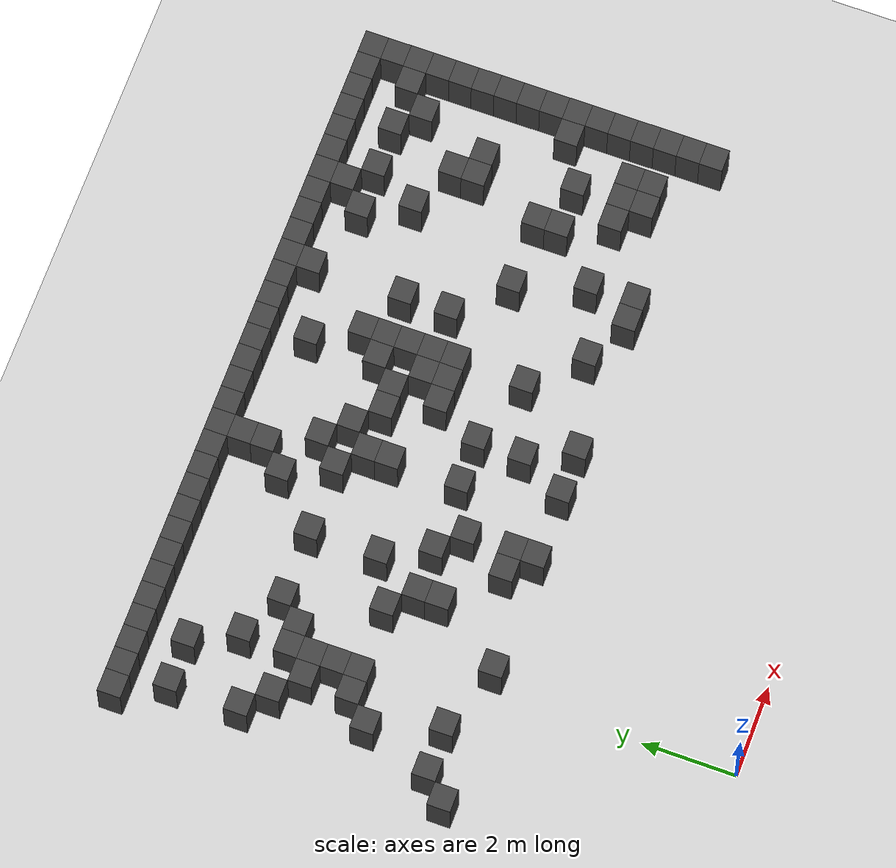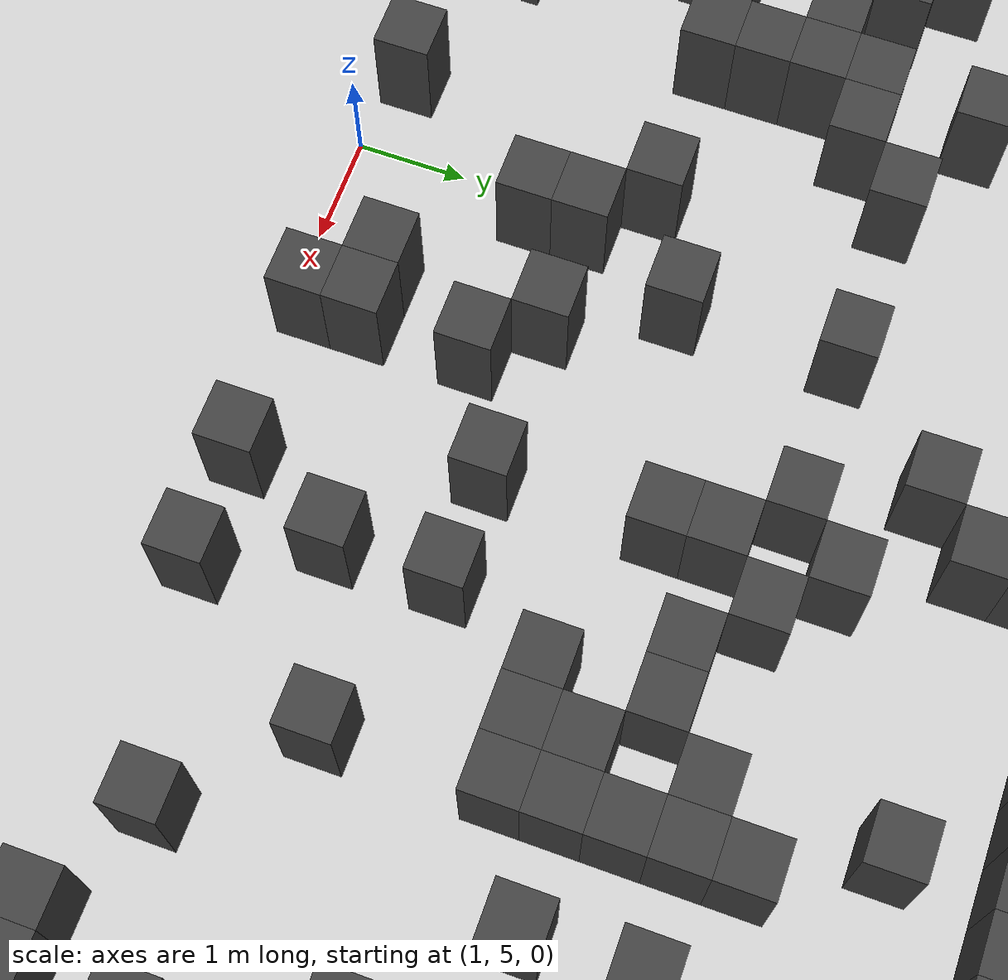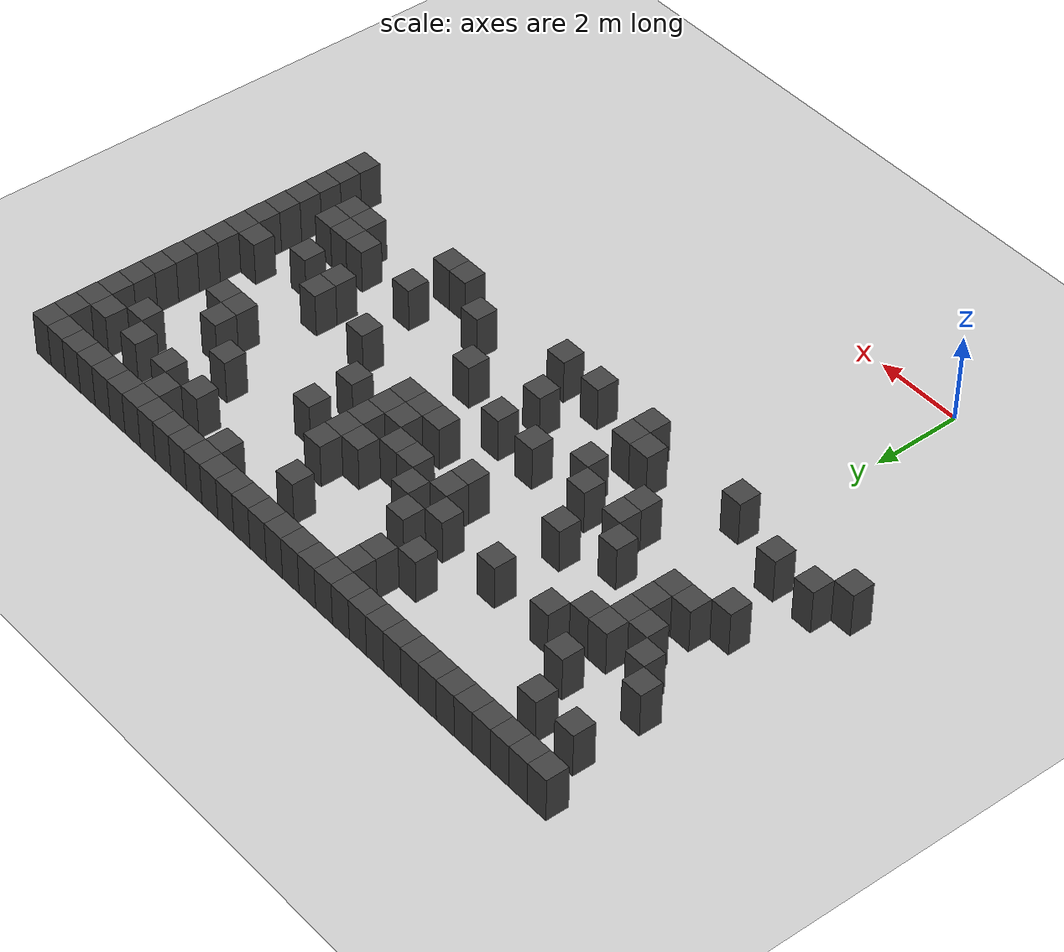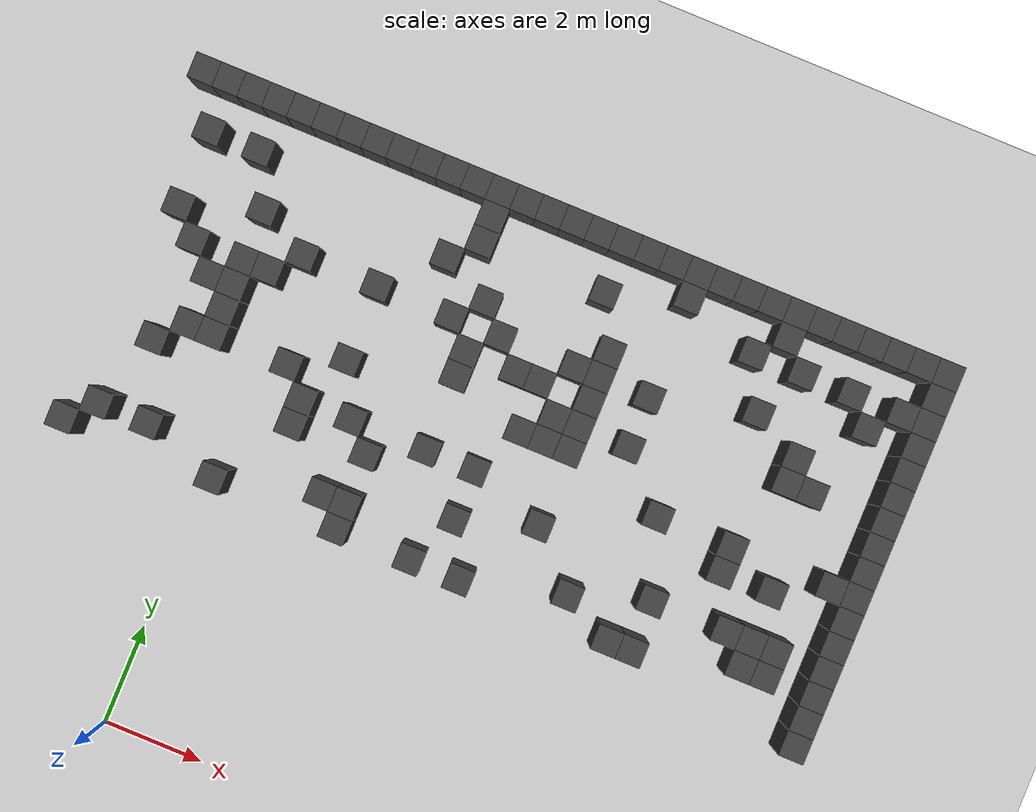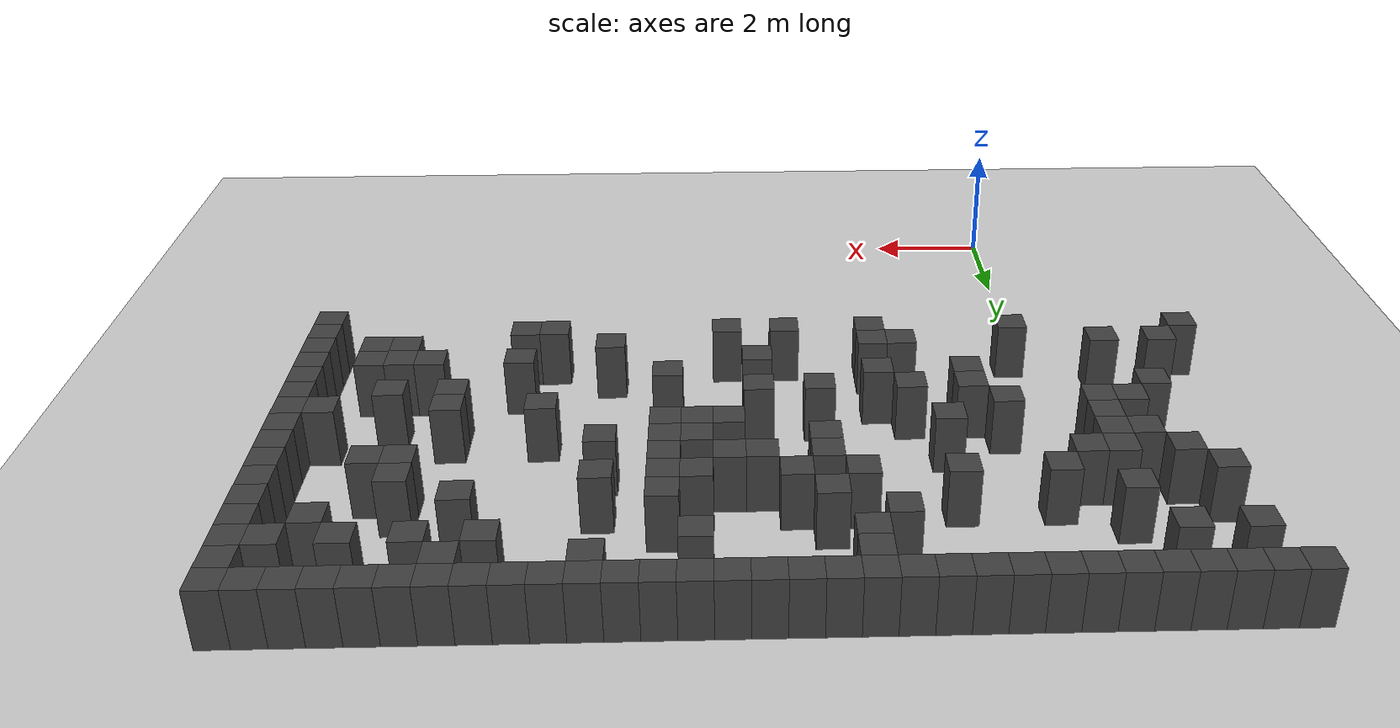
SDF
<sdf version="1.7">
 <world name="map_3891">
  <model name="ground_plane">
   <static>true</static>
   <link name="link">
    <collision name="collision">
     <geometry><plane><normal>0 0 1</normal><size>200 200</size></plane></geometry>
    </collision>
    <visual name="visual">
     <geometry><plane><normal>0 0 1</normal><size>200 200</size></plane></geometry>
     <material><ambient>0.8 0.8 0.8 1</ambient><diffuse>0.8 0.8 0.8 1</diffuse></material>
    </visual>
   </link>
  </model>
  <model name="maze_environment">
   <static>true</static>
   <link name="wall_19">
    <pose>-2.750 12.250 0.500 0 0 0</pose>
    <collision name="col"><geometry><box><size>0.5 0.5 1.0</size></box></geometry></collision>
    <visual name="vis">
     <geometry><box><size>0.5 0.5 1.0</size></box></geometry>
     <material><ambient>0.15 0.15 0.15 1</ambient><diffuse>0.25 0.25 0.25 1</diffuse></material>
    </visual>
   </link>
   <link name="wall_20">
    <pose>-2.250 12.250 0.500 0 0 0</pose>
    <collision name="col"><geometry><box><size>0.5 0.5 1.0</size></box></geometry></collision>
    <visual name="vis">
     <geometry><box><size>0.5 0.5 1.0</size></box></geometry>
     <material><ambient>0.15 0.15 0.15 1</ambient><diffuse>0.25 0.25 0.25 1</diffuse></material>
    </visual>
   </link>
   <link name="wall_21">
    <pose>-1.750 12.250 0.500 0 0 0</pose>
    <collision name="col"><geometry><box><size>0.5 0.5 1.0</size></box></geometry></collision>
    <visual name="vis">
     <geometry><box><size>0.5 0.5 1.0</size></box></geometry>
     <material><ambient>0.15 0.15 0.15 1</ambient><diffuse>0.25 0.25 0.25 1</diffuse></material>
    </visual>
   </link>
   <link name="wall_22">
    <pose>-1.250 12.250 0.500 0 0 0</pose>
    <collision name="col"><geometry><box><size>0.5 0.5 1.0</size></box></geometry></collision>
    <visual name="vis">
     <geometry><box><size>0.5 0.5 1.0</size></box></geometry>
     <material><ambient>0.15 0.15 0.15 1</ambient><diffuse>0.25 0.25 0.25 1</diffuse></material>
    </visual>
   </link>
   <link name="wall_23">
    <pose>-0.750 12.250 0.500 0 0 0</pose>
    <collision name="col"><geometry><box><size>0.5 0.5 1.0</size></box></geometry></collision>
    <visual name="vis">
     <geometry><box><size>0.5 0.5 1.0</size></box></geometry>
     <material><ambient>0.15 0.15 0.15 1</ambient><diffuse>0.25 0.25 0.25 1</diffuse></material>
    </visual>
   </link>
   <link name="wall_24">
    <pose>-0.250 12.250 0.500 0 0 0</pose>
    <collision name="col"><geometry><box><size>0.5 0.5 1.0</size></box></geometry></collision>
    <visual name="vis">
     <geometry><box><size>0.5 0.5 1.0</size></box></geometry>
     <material><ambient>0.15 0.15 0.15 1</ambient><diffuse>0.25 0.25 0.25 1</diffuse></material>
    </visual>
   </link>
   <link name="wall_25">
    <pose>0.250 12.250 0.500 0 0 0</pose>
    <collision name="col"><geometry><box><size>0.5 0.5 1.0</size></box></geometry></collision>
    <visual name="vis">
     <geometry><box><size>0.5 0.5 1.0</size></box></geometry>
     <material><ambient>0.15 0.15 0.15 1</ambient><diffuse>0.25 0.25 0.25 1</diffuse></material>
    </visual>
   </link>
   <link name="wall_26">
    <pose>0.750 12.250 0.500 0 0 0</pose>
    <collision name="col"><geometry><box><size>0.5 0.5 1.0</size></box></geometry></collision>
    <visual name="vis">
     <geometry><box><size>0.5 0.5 1.0</size></box></geometry>
     <material><ambient>0.15 0.15 0.15 1</ambient><diffuse>0.25 0.25 0.25 1</diffuse></material>
    </visual>
   </link>
   <link name="wall_27">
    <pose>1.250 12.250 0.500 0 0 0</pose>
    <collision name="col"><geometry><box><size>0.5 0.5 1.0</size></box></geometry></collision>
    <visual name="vis">
     <geometry><box><size>0.5 0.5 1.0</size></box></geometry>
     <material><ambient>0.15 0.15 0.15 1</ambient><diffuse>0.25 0.25 0.25 1</diffuse></material>
    </visual>
   </link>
   <link name="wall_28">
    <pose>1.750 12.250 0.500 0 0 0</pose>
    <collision name="col"><geometry><box><size>0.5 0.5 1.0</size></box></geometry></collision>
    <visual name="vis">
     <geometry><box><size>0.5 0.5 1.0</size></box></geometry>
     <material><ambient>0.15 0.15 0.15 1</ambient><diffuse>0.25 0.25 0.25 1</diffuse></material>
    </visual>
   </link>
   <link name="wall_29">
    <pose>2.250 12.250 0.500 0 0 0</pose>
    <collision name="col"><geometry><box><size>0.5 0.5 1.0</size></box></geometry></collision>
    <visual name="vis">
     <geometry><box><size>0.5 0.5 1.0</size></box></geometry>
     <material><ambient>0.15 0.15 0.15 1</ambient><diffuse>0.25 0.25 0.25 1</diffuse></material>
    </visual>
   </link>
   <link name="wall_30">
    <pose>2.750 12.250 0.500 0 0 0</pose>
    <collision name="col"><geometry><box><size>0.5 0.5 1.0</size></box></geometry></collision>
    <visual name="vis">
     <geometry><box><size>0.5 0.5 1.0</size></box></geometry>
     <material><ambient>0.15 0.15 0.15 1</ambient><diffuse>0.25 0.25 0.25 1</diffuse></material>
    </visual>
   </link>
   <link name="wall_31">
    <pose>3.250 12.250 0.500 0 0 0</pose>
    <collision name="col"><geometry><box><size>0.5 0.5 1.0</size></box></geometry></collision>
    <visual name="vis">
     <geometry><box><size>0.5 0.5 1.0</size></box></geometry>
     <material><ambient>0.15 0.15 0.15 1</ambient><diffuse>0.25 0.25 0.25 1</diffuse></material>
    </visual>
   </link>
   <link name="wall_32">
    <pose>3.750 12.250 0.500 0 0 0</pose>
    <collision name="col"><geometry><box><size>0.5 0.5 1.0</size></box></geometry></collision>
    <visual name="vis">
     <geometry><box><size>0.5 0.5 1.0</size></box></geometry>
     <material><ambient>0.15 0.15 0.15 1</ambient><diffuse>0.25 0.25 0.25 1</diffuse></material>
    </visual>
   </link>
   <link name="wall_33">
    <pose>4.250 12.250 0.500 0 0 0</pose>
    <collision name="col"><geometry><box><size>0.5 0.5 1.0</size></box></geometry></collision>
    <visual name="vis">
     <geometry><box><size>0.5 0.5 1.0</size></box></geometry>
     <material><ambient>0.15 0.15 0.15 1</ambient><diffuse>0.25 0.25 0.25 1</diffuse></material>
    </visual>
   </link>
   <link name="wall_34">
    <pose>4.750 12.250 0.500 0 0 0</pose>
    <collision name="col"><geometry><box><size>0.5 0.5 1.0</size></box></geometry></collision>
    <visual name="vis">
     <geometry><box><size>0.5 0.5 1.0</size></box></geometry>
     <material><ambient>0.15 0.15 0.15 1</ambient><diffuse>0.25 0.25 0.25 1</diffuse></material>
    </visual>
   </link>
   <link name="wall_35">
    <pose>5.250 12.250 0.500 0 0 0</pose>
    <collision name="col"><geometry><box><size>0.5 0.5 1.0</size></box></geometry></collision>
    <visual name="vis">
     <geometry><box><size>0.5 0.5 1.0</size></box></geometry>
     <material><ambient>0.15 0.15 0.15 1</ambient><diffuse>0.25 0.25 0.25 1</diffuse></material>
    </visual>
   </link>
   <link name="wall_36">
    <pose>5.750 12.250 0.500 0 0 0</pose>
    <collision name="col"><geometry><box><size>0.5 0.5 1.0</size></box></geometry></collision>
    <visual name="vis">
     <geometry><box><size>0.5 0.5 1.0</size></box></geometry>
     <material><ambient>0.15 0.15 0.15 1</ambient><diffuse>0.25 0.25 0.25 1</diffuse></material>
    </visual>
   </link>
   <link name="wall_37">
    <pose>6.250 12.250 0.500 0 0 0</pose>
    <collision name="col"><geometry><box><size>0.5 0.5 1.0</size></box></geometry></collision>
    <visual name="vis">
     <geometry><box><size>0.5 0.5 1.0</size></box></geometry>
     <material><ambient>0.15 0.15 0.15 1</ambient><diffuse>0.25 0.25 0.25 1</diffuse></material>
    </visual>
   </link>
   <link name="wall_38">
    <pose>6.750 12.250 0.500 0 0 0</pose>
    <collision name="col"><geometry><box><size>0.5 0.5 1.0</size></box></geometry></collision>
    <visual name="vis">
     <geometry><box><size>0.5 0.5 1.0</size></box></geometry>
     <material><ambient>0.15 0.15 0.15 1</ambient><diffuse>0.25 0.25 0.25 1</diffuse></material>
    </visual>
   </link>
   <link name="wall_39">
    <pose>7.250 12.250 0.500 0 0 0</pose>
    <collision name="col"><geometry><box><size>0.5 0.5 1.0</size></box></geometry></collision>
    <visual name="vis">
     <geometry><box><size>0.5 0.5 1.0</size></box></geometry>
     <material><ambient>0.15 0.15 0.15 1</ambient><diffuse>0.25 0.25 0.25 1</diffuse></material>
    </visual>
   </link>
   <link name="wall_40">
    <pose>7.750 12.250 0.500 0 0 0</pose>
    <collision name="col"><geometry><box><size>0.5 0.5 1.0</size></box></geometry></collision>
    <visual name="vis">
     <geometry><box><size>0.5 0.5 1.0</size></box></geometry>
     <material><ambient>0.15 0.15 0.15 1</ambient><diffuse>0.25 0.25 0.25 1</diffuse></material>
    </visual>
   </link>
   <link name="wall_41">
    <pose>8.250 12.250 0.500 0 0 0</pose>
    <collision name="col"><geometry><box><size>0.5 0.5 1.0</size></box></geometry></collision>
    <visual name="vis">
     <geometry><box><size>0.5 0.5 1.0</size></box></geometry>
     <material><ambient>0.15 0.15 0.15 1</ambient><diffuse>0.25 0.25 0.25 1</diffuse></material>
    </visual>
   </link>
   <link name="wall_42">
    <pose>8.750 12.250 0.500 0 0 0</pose>
    <collision name="col"><geometry><box><size>0.5 0.5 1.0</size></box></geometry></collision>
    <visual name="vis">
     <geometry><box><size>0.5 0.5 1.0</size></box></geometry>
     <material><ambient>0.15 0.15 0.15 1</ambient><diffuse>0.25 0.25 0.25 1</diffuse></material>
    </visual>
   </link>
   <link name="wall_43">
    <pose>9.250 12.250 0.500 0 0 0</pose>
    <collision name="col"><geometry><box><size>0.5 0.5 1.0</size></box></geometry></collision>
    <visual name="vis">
     <geometry><box><size>0.5 0.5 1.0</size></box></geometry>
     <material><ambient>0.15 0.15 0.15 1</ambient><diffuse>0.25 0.25 0.25 1</diffuse></material>
    </visual>
   </link>
   <link name="wall_44">
    <pose>9.750 12.250 0.500 0 0 0</pose>
    <collision name="col"><geometry><box><size>0.5 0.5 1.0</size></box></geometry></collision>
    <visual name="vis">
     <geometry><box><size>0.5 0.5 1.0</size></box></geometry>
     <material><ambient>0.15 0.15 0.15 1</ambient><diffuse>0.25 0.25 0.25 1</diffuse></material>
    </visual>
   </link>
   <link name="wall_45">
    <pose>10.250 12.250 0.500 0 0 0</pose>
    <collision name="col"><geometry><box><size>0.5 0.5 1.0</size></box></geometry></collision>
    <visual name="vis">
     <geometry><box><size>0.5 0.5 1.0</size></box></geometry>
     <material><ambient>0.15 0.15 0.15 1</ambient><diffuse>0.25 0.25 0.25 1</diffuse></material>
    </visual>
   </link>
   <link name="wall_46">
    <pose>10.750 12.250 0.500 0 0 0</pose>
    <collision name="col"><geometry><box><size>0.5 0.5 1.0</size></box></geometry></collision>
    <visual name="vis">
     <geometry><box><size>0.5 0.5 1.0</size></box></geometry>
     <material><ambient>0.15 0.15 0.15 1</ambient><diffuse>0.25 0.25 0.25 1</diffuse></material>
    </visual>
   </link>
   <link name="wall_47">
    <pose>11.250 12.250 0.500 0 0 0</pose>
    <collision name="col"><geometry><box><size>0.5 0.5 1.0</size></box></geometry></collision>
    <visual name="vis">
     <geometry><box><size>0.5 0.5 1.0</size></box></geometry>
     <material><ambient>0.15 0.15 0.15 1</ambient><diffuse>0.25 0.25 0.25 1</diffuse></material>
    </visual>
   </link>
   <link name="wall_48">
    <pose>11.750 12.250 0.500 0 0 0</pose>
    <collision name="col"><geometry><box><size>0.5 0.5 1.0</size></box></geometry></collision>
    <visual name="vis">
     <geometry><box><size>0.5 0.5 1.0</size></box></geometry>
     <material><ambient>0.15 0.15 0.15 1</ambient><diffuse>0.25 0.25 0.25 1</diffuse></material>
    </visual>
   </link>
   <link name="wall_49">
    <pose>12.250 12.250 0.500 0 0 0</pose>
    <collision name="col"><geometry><box><size>0.5 0.5 1.0</size></box></geometry></collision>
    <visual name="vis">
     <geometry><box><size>0.5 0.5 1.0</size></box></geometry>
     <material><ambient>0.15 0.15 0.15 1</ambient><diffuse>0.25 0.25 0.25 1</diffuse></material>
    </visual>
   </link>
   <link name="wall_57">
    <pose>3.250 11.750 0.500 0 0 0</pose>
    <collision name="col"><geometry><box><size>0.5 0.5 1.0</size></box></geometry></collision>
    <visual name="vis">
     <geometry><box><size>0.5 0.5 1.0</size></box></geometry>
     <material><ambient>0.15 0.15 0.15 1</ambient><diffuse>0.25 0.25 0.25 1</diffuse></material>
    </visual>
   </link>
   <link name="wall_58">
    <pose>7.250 11.750 0.500 0 0 0</pose>
    <collision name="col"><geometry><box><size>0.5 0.5 1.0</size></box></geometry></collision>
    <visual name="vis">
     <geometry><box><size>0.5 0.5 1.0</size></box></geometry>
     <material><ambient>0.15 0.15 0.15 1</ambient><diffuse>0.25 0.25 0.25 1</diffuse></material>
    </visual>
   </link>
   <link name="wall_59">
    <pose>9.250 11.750 0.500 0 0 0</pose>
    <collision name="col"><geometry><box><size>0.5 0.5 1.0</size></box></geometry></collision>
    <visual name="vis">
     <geometry><box><size>0.5 0.5 1.0</size></box></geometry>
     <material><ambient>0.15 0.15 0.15 1</ambient><diffuse>0.25 0.25 0.25 1</diffuse></material>
    </visual>
   </link>
   <link name="wall_60">
    <pose>12.250 11.750 0.500 0 0 0</pose>
    <collision name="col"><geometry><box><size>0.5 0.5 1.0</size></box></geometry></collision>
    <visual name="vis">
     <geometry><box><size>0.5 0.5 1.0</size></box></geometry>
     <material><ambient>0.15 0.15 0.15 1</ambient><diffuse>0.25 0.25 0.25 1</diffuse></material>
    </visual>
   </link>
   <link name="wall_64">
    <pose>-2.250 11.250 0.500 0 0 0</pose>
    <collision name="col"><geometry><box><size>0.5 0.5 1.0</size></box></geometry></collision>
    <visual name="vis">
     <geometry><box><size>0.5 0.5 1.0</size></box></geometry>
     <material><ambient>0.15 0.15 0.15 1</ambient><diffuse>0.25 0.25 0.25 1</diffuse></material>
    </visual>
   </link>
   <link name="wall_65">
    <pose>-1.250 11.250 0.500 0 0 0</pose>
    <collision name="col"><geometry><box><size>0.5 0.5 1.0</size></box></geometry></collision>
    <visual name="vis">
     <geometry><box><size>0.5 0.5 1.0</size></box></geometry>
     <material><ambient>0.15 0.15 0.15 1</ambient><diffuse>0.25 0.25 0.25 1</diffuse></material>
    </visual>
   </link>
   <link name="wall_66">
    <pose>3.250 11.250 0.500 0 0 0</pose>
    <collision name="col"><geometry><box><size>0.5 0.5 1.0</size></box></geometry></collision>
    <visual name="vis">
     <geometry><box><size>0.5 0.5 1.0</size></box></geometry>
     <material><ambient>0.15 0.15 0.15 1</ambient><diffuse>0.25 0.25 0.25 1</diffuse></material>
    </visual>
   </link>
   <link name="wall_67">
    <pose>5.750 11.250 0.500 0 0 0</pose>
    <collision name="col"><geometry><box><size>0.5 0.5 1.0</size></box></geometry></collision>
    <visual name="vis">
     <geometry><box><size>0.5 0.5 1.0</size></box></geometry>
     <material><ambient>0.15 0.15 0.15 1</ambient><diffuse>0.25 0.25 0.25 1</diffuse></material>
    </visual>
   </link>
   <link name="wall_68">
    <pose>8.750 11.250 0.500 0 0 0</pose>
    <collision name="col"><geometry><box><size>0.5 0.5 1.0</size></box></geometry></collision>
    <visual name="vis">
     <geometry><box><size>0.5 0.5 1.0</size></box></geometry>
     <material><ambient>0.15 0.15 0.15 1</ambient><diffuse>0.25 0.25 0.25 1</diffuse></material>
    </visual>
   </link>
   <link name="wall_69">
    <pose>9.750 11.250 0.500 0 0 0</pose>
    <collision name="col"><geometry><box><size>0.5 0.5 1.0</size></box></geometry></collision>
    <visual name="vis">
     <geometry><box><size>0.5 0.5 1.0</size></box></geometry>
     <material><ambient>0.15 0.15 0.15 1</ambient><diffuse>0.25 0.25 0.25 1</diffuse></material>
    </visual>
   </link>
   <link name="wall_70">
    <pose>10.750 11.250 0.500 0 0 0</pose>
    <collision name="col"><geometry><box><size>0.5 0.5 1.0</size></box></geometry></collision>
    <visual name="vis">
     <geometry><box><size>0.5 0.5 1.0</size></box></geometry>
     <material><ambient>0.15 0.15 0.15 1</ambient><diffuse>0.25 0.25 0.25 1</diffuse></material>
    </visual>
   </link>
   <link name="wall_71">
    <pose>11.750 11.250 0.500 0 0 0</pose>
    <collision name="col"><geometry><box><size>0.5 0.5 1.0</size></box></geometry></collision>
    <visual name="vis">
     <geometry><box><size>0.5 0.5 1.0</size></box></geometry>
     <material><ambient>0.15 0.15 0.15 1</ambient><diffuse>0.25 0.25 0.25 1</diffuse></material>
    </visual>
   </link>
   <link name="wall_72">
    <pose>12.250 11.250 0.500 0 0 0</pose>
    <collision name="col"><geometry><box><size>0.5 0.5 1.0</size></box></geometry></collision>
    <visual name="vis">
     <geometry><box><size>0.5 0.5 1.0</size></box></geometry>
     <material><ambient>0.15 0.15 0.15 1</ambient><diffuse>0.25 0.25 0.25 1</diffuse></material>
    </visual>
   </link>
   <link name="wall_80">
    <pose>2.750 10.750 0.500 0 0 0</pose>
    <collision name="col"><geometry><box><size>0.5 0.5 1.0</size></box></geometry></collision>
    <visual name="vis">
     <geometry><box><size>0.5 0.5 1.0</size></box></geometry>
     <material><ambient>0.15 0.15 0.15 1</ambient><diffuse>0.25 0.25 0.25 1</diffuse></material>
    </visual>
   </link>
   <link name="wall_81">
    <pose>11.250 10.750 0.500 0 0 0</pose>
    <collision name="col"><geometry><box><size>0.5 0.5 1.0</size></box></geometry></collision>
    <visual name="vis">
     <geometry><box><size>0.5 0.5 1.0</size></box></geometry>
     <material><ambient>0.15 0.15 0.15 1</ambient><diffuse>0.25 0.25 0.25 1</diffuse></material>
    </visual>
   </link>
   <link name="wall_82">
    <pose>12.250 10.750 0.500 0 0 0</pose>
    <collision name="col"><geometry><box><size>0.5 0.5 1.0</size></box></geometry></collision>
    <visual name="vis">
     <geometry><box><size>0.5 0.5 1.0</size></box></geometry>
     <material><ambient>0.15 0.15 0.15 1</ambient><diffuse>0.25 0.25 0.25 1</diffuse></material>
    </visual>
   </link>
   <link name="wall_91">
    <pose>-0.750 10.250 0.500 0 0 0</pose>
    <collision name="col"><geometry><box><size>0.5 0.5 1.0</size></box></geometry></collision>
    <visual name="vis">
     <geometry><box><size>0.5 0.5 1.0</size></box></geometry>
     <material><ambient>0.15 0.15 0.15 1</ambient><diffuse>0.25 0.25 0.25 1</diffuse></material>
    </visual>
   </link>
   <link name="wall_92">
    <pose>3.750 10.250 0.500 0 0 0</pose>
    <collision name="col"><geometry><box><size>0.5 0.5 1.0</size></box></geometry></collision>
    <visual name="vis">
     <geometry><box><size>0.5 0.5 1.0</size></box></geometry>
     <material><ambient>0.15 0.15 0.15 1</ambient><diffuse>0.25 0.25 0.25 1</diffuse></material>
    </visual>
   </link>
   <link name="wall_93">
    <pose>6.250 10.250 0.500 0 0 0</pose>
    <collision name="col"><geometry><box><size>0.5 0.5 1.0</size></box></geometry></collision>
    <visual name="vis">
     <geometry><box><size>0.5 0.5 1.0</size></box></geometry>
     <material><ambient>0.15 0.15 0.15 1</ambient><diffuse>0.25 0.25 0.25 1</diffuse></material>
    </visual>
   </link>
   <link name="wall_94">
    <pose>9.250 10.250 0.500 0 0 0</pose>
    <collision name="col"><geometry><box><size>0.5 0.5 1.0</size></box></geometry></collision>
    <visual name="vis">
     <geometry><box><size>0.5 0.5 1.0</size></box></geometry>
     <material><ambient>0.15 0.15 0.15 1</ambient><diffuse>0.25 0.25 0.25 1</diffuse></material>
    </visual>
   </link>
   <link name="wall_95">
    <pose>12.250 10.250 0.500 0 0 0</pose>
    <collision name="col"><geometry><box><size>0.5 0.5 1.0</size></box></geometry></collision>
    <visual name="vis">
     <geometry><box><size>0.5 0.5 1.0</size></box></geometry>
     <material><ambient>0.15 0.15 0.15 1</ambient><diffuse>0.25 0.25 0.25 1</diffuse></material>
    </visual>
   </link>
   <link name="wall_102">
    <pose>-2.250 9.750 0.500 0 0 0</pose>
    <collision name="col"><geometry><box><size>0.5 0.5 1.0</size></box></geometry></collision>
    <visual name="vis">
     <geometry><box><size>0.5 0.5 1.0</size></box></geometry>
     <material><ambient>0.15 0.15 0.15 1</ambient><diffuse>0.25 0.25 0.25 1</diffuse></material>
    </visual>
   </link>
   <link name="wall_103">
    <pose>0.250 9.750 0.500 0 0 0</pose>
    <collision name="col"><geometry><box><size>0.5 0.5 1.0</size></box></geometry></collision>
    <visual name="vis">
     <geometry><box><size>0.5 0.5 1.0</size></box></geometry>
     <material><ambient>0.15 0.15 0.15 1</ambient><diffuse>0.25 0.25 0.25 1</diffuse></material>
    </visual>
   </link>
   <link name="wall_104">
    <pose>1.750 9.750 0.500 0 0 0</pose>
    <collision name="col"><geometry><box><size>0.5 0.5 1.0</size></box></geometry></collision>
    <visual name="vis">
     <geometry><box><size>0.5 0.5 1.0</size></box></geometry>
     <material><ambient>0.15 0.15 0.15 1</ambient><diffuse>0.25 0.25 0.25 1</diffuse></material>
    </visual>
   </link>
   <link name="wall_105">
    <pose>3.250 9.750 0.500 0 0 0</pose>
    <collision name="col"><geometry><box><size>0.5 0.5 1.0</size></box></geometry></collision>
    <visual name="vis">
     <geometry><box><size>0.5 0.5 1.0</size></box></geometry>
     <material><ambient>0.15 0.15 0.15 1</ambient><diffuse>0.25 0.25 0.25 1</diffuse></material>
    </visual>
   </link>
   <link name="wall_106">
    <pose>4.250 9.750 0.500 0 0 0</pose>
    <collision name="col"><geometry><box><size>0.5 0.5 1.0</size></box></geometry></collision>
    <visual name="vis">
     <geometry><box><size>0.5 0.5 1.0</size></box></geometry>
     <material><ambient>0.15 0.15 0.15 1</ambient><diffuse>0.25 0.25 0.25 1</diffuse></material>
    </visual>
   </link>
   <link name="wall_107">
    <pose>5.750 9.750 0.500 0 0 0</pose>
    <collision name="col"><geometry><box><size>0.5 0.5 1.0</size></box></geometry></collision>
    <visual name="vis">
     <geometry><box><size>0.5 0.5 1.0</size></box></geometry>
     <material><ambient>0.15 0.15 0.15 1</ambient><diffuse>0.25 0.25 0.25 1</diffuse></material>
    </visual>
   </link>
   <link name="wall_108">
    <pose>6.250 9.750 0.500 0 0 0</pose>
    <collision name="col"><geometry><box><size>0.5 0.5 1.0</size></box></geometry></collision>
    <visual name="vis">
     <geometry><box><size>0.5 0.5 1.0</size></box></geometry>
     <material><ambient>0.15 0.15 0.15 1</ambient><diffuse>0.25 0.25 0.25 1</diffuse></material>
    </visual>
   </link>
   <link name="wall_109">
    <pose>7.250 9.750 0.500 0 0 0</pose>
    <collision name="col"><geometry><box><size>0.5 0.5 1.0</size></box></geometry></collision>
    <visual name="vis">
     <geometry><box><size>0.5 0.5 1.0</size></box></geometry>
     <material><ambient>0.15 0.15 0.15 1</ambient><diffuse>0.25 0.25 0.25 1</diffuse></material>
    </visual>
   </link>
   <link name="wall_110">
    <pose>10.250 9.750 0.500 0 0 0</pose>
    <collision name="col"><geometry><box><size>0.5 0.5 1.0</size></box></geometry></collision>
    <visual name="vis">
     <geometry><box><size>0.5 0.5 1.0</size></box></geometry>
     <material><ambient>0.15 0.15 0.15 1</ambient><diffuse>0.25 0.25 0.25 1</diffuse></material>
    </visual>
   </link>
   <link name="wall_111">
    <pose>12.250 9.750 0.500 0 0 0</pose>
    <collision name="col"><geometry><box><size>0.5 0.5 1.0</size></box></geometry></collision>
    <visual name="vis">
     <geometry><box><size>0.5 0.5 1.0</size></box></geometry>
     <material><ambient>0.15 0.15 0.15 1</ambient><diffuse>0.25 0.25 0.25 1</diffuse></material>
    </visual>
   </link>
   <link name="wall_117">
    <pose>-1.750 9.250 0.500 0 0 0</pose>
    <collision name="col"><geometry><box><size>0.5 0.5 1.0</size></box></geometry></collision>
    <visual name="vis">
     <geometry><box><size>0.5 0.5 1.0</size></box></geometry>
     <material><ambient>0.15 0.15 0.15 1</ambient><diffuse>0.25 0.25 0.25 1</diffuse></material>
    </visual>
   </link>
   <link name="wall_118">
    <pose>-0.750 9.250 0.500 0 0 0</pose>
    <collision name="col"><geometry><box><size>0.5 0.5 1.0</size></box></geometry></collision>
    <visual name="vis">
     <geometry><box><size>0.5 0.5 1.0</size></box></geometry>
     <material><ambient>0.15 0.15 0.15 1</ambient><diffuse>0.25 0.25 0.25 1</diffuse></material>
    </visual>
   </link>
   <link name="wall_119">
    <pose>-0.250 9.250 0.500 0 0 0</pose>
    <collision name="col"><geometry><box><size>0.5 0.5 1.0</size></box></geometry></collision>
    <visual name="vis">
     <geometry><box><size>0.5 0.5 1.0</size></box></geometry>
     <material><ambient>0.15 0.15 0.15 1</ambient><diffuse>0.25 0.25 0.25 1</diffuse></material>
    </visual>
   </link>
   <link name="wall_120">
    <pose>3.750 9.250 0.500 0 0 0</pose>
    <collision name="col"><geometry><box><size>0.5 0.5 1.0</size></box></geometry></collision>
    <visual name="vis">
     <geometry><box><size>0.5 0.5 1.0</size></box></geometry>
     <material><ambient>0.15 0.15 0.15 1</ambient><diffuse>0.25 0.25 0.25 1</diffuse></material>
    </visual>
   </link>
   <link name="wall_121">
    <pose>4.750 9.250 0.500 0 0 0</pose>
    <collision name="col"><geometry><box><size>0.5 0.5 1.0</size></box></geometry></collision>
    <visual name="vis">
     <geometry><box><size>0.5 0.5 1.0</size></box></geometry>
     <material><ambient>0.15 0.15 0.15 1</ambient><diffuse>0.25 0.25 0.25 1</diffuse></material>
    </visual>
   </link>
   <link name="wall_122">
    <pose>5.250 9.250 0.500 0 0 0</pose>
    <collision name="col"><geometry><box><size>0.5 0.5 1.0</size></box></geometry></collision>
    <visual name="vis">
     <geometry><box><size>0.5 0.5 1.0</size></box></geometry>
     <material><ambient>0.15 0.15 0.15 1</ambient><diffuse>0.25 0.25 0.25 1</diffuse></material>
    </visual>
   </link>
   <link name="wall_123">
    <pose>6.250 9.250 0.500 0 0 0</pose>
    <collision name="col"><geometry><box><size>0.5 0.5 1.0</size></box></geometry></collision>
    <visual name="vis">
     <geometry><box><size>0.5 0.5 1.0</size></box></geometry>
     <material><ambient>0.15 0.15 0.15 1</ambient><diffuse>0.25 0.25 0.25 1</diffuse></material>
    </visual>
   </link>
   <link name="wall_124">
    <pose>10.250 9.250 0.500 0 0 0</pose>
    <collision name="col"><geometry><box><size>0.5 0.5 1.0</size></box></geometry></collision>
    <visual name="vis">
     <geometry><box><size>0.5 0.5 1.0</size></box></geometry>
     <material><ambient>0.15 0.15 0.15 1</ambient><diffuse>0.25 0.25 0.25 1</diffuse></material>
    </visual>
   </link>
   <link name="wall_125">
    <pose>10.750 9.250 0.500 0 0 0</pose>
    <collision name="col"><geometry><box><size>0.5 0.5 1.0</size></box></geometry></collision>
    <visual name="vis">
     <geometry><box><size>0.5 0.5 1.0</size></box></geometry>
     <material><ambient>0.15 0.15 0.15 1</ambient><diffuse>0.25 0.25 0.25 1</diffuse></material>
    </visual>
   </link>
   <link name="wall_126">
    <pose>12.250 9.250 0.500 0 0 0</pose>
    <collision name="col"><geometry><box><size>0.5 0.5 1.0</size></box></geometry></collision>
    <visual name="vis">
     <geometry><box><size>0.5 0.5 1.0</size></box></geometry>
     <material><ambient>0.15 0.15 0.15 1</ambient><diffuse>0.25 0.25 0.25 1</diffuse></material>
    </visual>
   </link>
   <link name="wall_131">
    <pose>-1.250 8.750 0.500 0 0 0</pose>
    <collision name="col"><geometry><box><size>0.5 0.5 1.0</size></box></geometry></collision>
    <visual name="vis">
     <geometry><box><size>0.5 0.5 1.0</size></box></geometry>
     <material><ambient>0.15 0.15 0.15 1</ambient><diffuse>0.25 0.25 0.25 1</diffuse></material>
    </visual>
   </link>
   <link name="wall_132">
    <pose>-0.750 8.750 0.500 0 0 0</pose>
    <collision name="col"><geometry><box><size>0.5 0.5 1.0</size></box></geometry></collision>
    <visual name="vis">
     <geometry><box><size>0.5 0.5 1.0</size></box></geometry>
     <material><ambient>0.15 0.15 0.15 1</ambient><diffuse>0.25 0.25 0.25 1</diffuse></material>
    </visual>
   </link>
   <link name="wall_133">
    <pose>3.750 8.750 0.500 0 0 0</pose>
    <collision name="col"><geometry><box><size>0.5 0.5 1.0</size></box></geometry></collision>
    <visual name="vis">
     <geometry><box><size>0.5 0.5 1.0</size></box></geometry>
     <material><ambient>0.15 0.15 0.15 1</ambient><diffuse>0.25 0.25 0.25 1</diffuse></material>
    </visual>
   </link>
   <link name="wall_134">
    <pose>5.750 8.750 0.500 0 0 0</pose>
    <collision name="col"><geometry><box><size>0.5 0.5 1.0</size></box></geometry></collision>
    <visual name="vis">
     <geometry><box><size>0.5 0.5 1.0</size></box></geometry>
     <material><ambient>0.15 0.15 0.15 1</ambient><diffuse>0.25 0.25 0.25 1</diffuse></material>
    </visual>
   </link>
   <link name="wall_135">
    <pose>6.250 8.750 0.500 0 0 0</pose>
    <collision name="col"><geometry><box><size>0.5 0.5 1.0</size></box></geometry></collision>
    <visual name="vis">
     <geometry><box><size>0.5 0.5 1.0</size></box></geometry>
     <material><ambient>0.15 0.15 0.15 1</ambient><diffuse>0.25 0.25 0.25 1</diffuse></material>
    </visual>
   </link>
   <link name="wall_136">
    <pose>7.250 8.750 0.500 0 0 0</pose>
    <collision name="col"><geometry><box><size>0.5 0.5 1.0</size></box></geometry></collision>
    <visual name="vis">
     <geometry><box><size>0.5 0.5 1.0</size></box></geometry>
     <material><ambient>0.15 0.15 0.15 1</ambient><diffuse>0.25 0.25 0.25 1</diffuse></material>
    </visual>
   </link>
   <link name="wall_137">
    <pose>12.250 8.750 0.500 0 0 0</pose>
    <collision name="col"><geometry><box><size>0.5 0.5 1.0</size></box></geometry></collision>
    <visual name="vis">
     <geometry><box><size>0.5 0.5 1.0</size></box></geometry>
     <material><ambient>0.15 0.15 0.15 1</ambient><diffuse>0.25 0.25 0.25 1</diffuse></material>
    </visual>
   </link>
   <link name="wall_145">
    <pose>-0.750 8.250 0.500 0 0 0</pose>
    <collision name="col"><geometry><box><size>0.5 0.5 1.0</size></box></geometry></collision>
    <visual name="vis">
     <geometry><box><size>0.5 0.5 1.0</size></box></geometry>
     <material><ambient>0.15 0.15 0.15 1</ambient><diffuse>0.25 0.25 0.25 1</diffuse></material>
    </visual>
   </link>
   <link name="wall_146">
    <pose>1.750 8.250 0.500 0 0 0</pose>
    <collision name="col"><geometry><box><size>0.5 0.5 1.0</size></box></geometry></collision>
    <visual name="vis">
     <geometry><box><size>0.5 0.5 1.0</size></box></geometry>
     <material><ambient>0.15 0.15 0.15 1</ambient><diffuse>0.25 0.25 0.25 1</diffuse></material>
    </visual>
   </link>
   <link name="wall_147">
    <pose>5.250 8.250 0.500 0 0 0</pose>
    <collision name="col"><geometry><box><size>0.5 0.5 1.0</size></box></geometry></collision>
    <visual name="vis">
     <geometry><box><size>0.5 0.5 1.0</size></box></geometry>
     <material><ambient>0.15 0.15 0.15 1</ambient><diffuse>0.25 0.25 0.25 1</diffuse></material>
    </visual>
   </link>
   <link name="wall_148">
    <pose>5.750 8.250 0.500 0 0 0</pose>
    <collision name="col"><geometry><box><size>0.5 0.5 1.0</size></box></geometry></collision>
    <visual name="vis">
     <geometry><box><size>0.5 0.5 1.0</size></box></geometry>
     <material><ambient>0.15 0.15 0.15 1</ambient><diffuse>0.25 0.25 0.25 1</diffuse></material>
    </visual>
   </link>
   <link name="wall_149">
    <pose>6.250 8.250 0.500 0 0 0</pose>
    <collision name="col"><geometry><box><size>0.5 0.5 1.0</size></box></geometry></collision>
    <visual name="vis">
     <geometry><box><size>0.5 0.5 1.0</size></box></geometry>
     <material><ambient>0.15 0.15 0.15 1</ambient><diffuse>0.25 0.25 0.25 1</diffuse></material>
    </visual>
   </link>
   <link name="wall_150">
    <pose>12.250 8.250 0.500 0 0 0</pose>
    <collision name="col"><geometry><box><size>0.5 0.5 1.0</size></box></geometry></collision>
    <visual name="vis">
     <geometry><box><size>0.5 0.5 1.0</size></box></geometry>
     <material><ambient>0.15 0.15 0.15 1</ambient><diffuse>0.25 0.25 0.25 1</diffuse></material>
    </visual>
   </link>
   <link name="wall_155">
    <pose>-1.250 7.750 0.500 0 0 0</pose>
    <collision name="col"><geometry><box><size>0.5 0.5 1.0</size></box></geometry></collision>
    <visual name="vis">
     <geometry><box><size>0.5 0.5 1.0</size></box></geometry>
     <material><ambient>0.15 0.15 0.15 1</ambient><diffuse>0.25 0.25 0.25 1</diffuse></material>
    </visual>
   </link>
   <link name="wall_156">
    <pose>-0.750 7.750 0.500 0 0 0</pose>
    <collision name="col"><geometry><box><size>0.5 0.5 1.0</size></box></geometry></collision>
    <visual name="vis">
     <geometry><box><size>0.5 0.5 1.0</size></box></geometry>
     <material><ambient>0.15 0.15 0.15 1</ambient><diffuse>0.25 0.25 0.25 1</diffuse></material>
    </visual>
   </link>
   <link name="wall_157">
    <pose>0.750 7.750 0.500 0 0 0</pose>
    <collision name="col"><geometry><box><size>0.5 0.5 1.0</size></box></geometry></collision>
    <visual name="vis">
     <geometry><box><size>0.5 0.5 1.0</size></box></geometry>
     <material><ambient>0.15 0.15 0.15 1</ambient><diffuse>0.25 0.25 0.25 1</diffuse></material>
    </visual>
   </link>
   <link name="wall_158">
    <pose>8.250 7.750 0.500 0 0 0</pose>
    <collision name="col"><geometry><box><size>0.5 0.5 1.0</size></box></geometry></collision>
    <visual name="vis">
     <geometry><box><size>0.5 0.5 1.0</size></box></geometry>
     <material><ambient>0.15 0.15 0.15 1</ambient><diffuse>0.25 0.25 0.25 1</diffuse></material>
    </visual>
   </link>
   <link name="wall_159">
    <pose>9.750 7.750 0.500 0 0 0</pose>
    <collision name="col"><geometry><box><size>0.5 0.5 1.0</size></box></geometry></collision>
    <visual name="vis">
     <geometry><box><size>0.5 0.5 1.0</size></box></geometry>
     <material><ambient>0.15 0.15 0.15 1</ambient><diffuse>0.25 0.25 0.25 1</diffuse></material>
    </visual>
   </link>
   <link name="wall_160">
    <pose>11.750 7.750 0.500 0 0 0</pose>
    <collision name="col"><geometry><box><size>0.5 0.5 1.0</size></box></geometry></collision>
    <visual name="vis">
     <geometry><box><size>0.5 0.5 1.0</size></box></geometry>
     <material><ambient>0.15 0.15 0.15 1</ambient><diffuse>0.25 0.25 0.25 1</diffuse></material>
    </visual>
   </link>
   <link name="wall_161">
    <pose>12.250 7.750 0.500 0 0 0</pose>
    <collision name="col"><geometry><box><size>0.5 0.5 1.0</size></box></geometry></collision>
    <visual name="vis">
     <geometry><box><size>0.5 0.5 1.0</size></box></geometry>
     <material><ambient>0.15 0.15 0.15 1</ambient><diffuse>0.25 0.25 0.25 1</diffuse></material>
    </visual>
   </link>
   <link name="wall_168">
    <pose>-1.750 7.250 0.500 0 0 0</pose>
    <collision name="col"><geometry><box><size>0.5 0.5 1.0</size></box></geometry></collision>
    <visual name="vis">
     <geometry><box><size>0.5 0.5 1.0</size></box></geometry>
     <material><ambient>0.15 0.15 0.15 1</ambient><diffuse>0.25 0.25 0.25 1</diffuse></material>
    </visual>
   </link>
   <link name="wall_169">
    <pose>1.250 7.250 0.500 0 0 0</pose>
    <collision name="col"><geometry><box><size>0.5 0.5 1.0</size></box></geometry></collision>
    <visual name="vis">
     <geometry><box><size>0.5 0.5 1.0</size></box></geometry>
     <material><ambient>0.15 0.15 0.15 1</ambient><diffuse>0.25 0.25 0.25 1</diffuse></material>
    </visual>
   </link>
   <link name="wall_170">
    <pose>2.250 7.250 0.500 0 0 0</pose>
    <collision name="col"><geometry><box><size>0.5 0.5 1.0</size></box></geometry></collision>
    <visual name="vis">
     <geometry><box><size>0.5 0.5 1.0</size></box></geometry>
     <material><ambient>0.15 0.15 0.15 1</ambient><diffuse>0.25 0.25 0.25 1</diffuse></material>
    </visual>
   </link>
   <link name="wall_171">
    <pose>3.750 7.250 0.500 0 0 0</pose>
    <collision name="col"><geometry><box><size>0.5 0.5 1.0</size></box></geometry></collision>
    <visual name="vis">
     <geometry><box><size>0.5 0.5 1.0</size></box></geometry>
     <material><ambient>0.15 0.15 0.15 1</ambient><diffuse>0.25 0.25 0.25 1</diffuse></material>
    </visual>
   </link>
   <link name="wall_172">
    <pose>4.750 7.250 0.500 0 0 0</pose>
    <collision name="col"><geometry><box><size>0.5 0.5 1.0</size></box></geometry></collision>
    <visual name="vis">
     <geometry><box><size>0.5 0.5 1.0</size></box></geometry>
     <material><ambient>0.15 0.15 0.15 1</ambient><diffuse>0.25 0.25 0.25 1</diffuse></material>
    </visual>
   </link>
   <link name="wall_173">
    <pose>9.750 7.250 0.500 0 0 0</pose>
    <collision name="col"><geometry><box><size>0.5 0.5 1.0</size></box></geometry></collision>
    <visual name="vis">
     <geometry><box><size>0.5 0.5 1.0</size></box></geometry>
     <material><ambient>0.15 0.15 0.15 1</ambient><diffuse>0.25 0.25 0.25 1</diffuse></material>
    </visual>
   </link>
   <link name="wall_174">
    <pose>10.750 7.250 0.500 0 0 0</pose>
    <collision name="col"><geometry><box><size>0.5 0.5 1.0</size></box></geometry></collision>
    <visual name="vis">
     <geometry><box><size>0.5 0.5 1.0</size></box></geometry>
     <material><ambient>0.15 0.15 0.15 1</ambient><diffuse>0.25 0.25 0.25 1</diffuse></material>
    </visual>
   </link>
   <link name="wall_175">
    <pose>12.250 7.250 0.500 0 0 0</pose>
    <collision name="col"><geometry><box><size>0.5 0.5 1.0</size></box></geometry></collision>
    <visual name="vis">
     <geometry><box><size>0.5 0.5 1.0</size></box></geometry>
     <material><ambient>0.15 0.15 0.15 1</ambient><diffuse>0.25 0.25 0.25 1</diffuse></material>
    </visual>
   </link>
   <link name="wall_180">
    <pose>1.250 6.750 0.500 0 0 0</pose>
    <collision name="col"><geometry><box><size>0.5 0.5 1.0</size></box></geometry></collision>
    <visual name="vis">
     <geometry><box><size>0.5 0.5 1.0</size></box></geometry>
     <material><ambient>0.15 0.15 0.15 1</ambient><diffuse>0.25 0.25 0.25 1</diffuse></material>
    </visual>
   </link>
   <link name="wall_181">
    <pose>2.750 6.750 0.500 0 0 0</pose>
    <collision name="col"><geometry><box><size>0.5 0.5 1.0</size></box></geometry></collision>
    <visual name="vis">
     <geometry><box><size>0.5 0.5 1.0</size></box></geometry>
     <material><ambient>0.15 0.15 0.15 1</ambient><diffuse>0.25 0.25 0.25 1</diffuse></material>
    </visual>
   </link>
   <link name="wall_182">
    <pose>6.250 6.750 0.500 0 0 0</pose>
    <collision name="col"><geometry><box><size>0.5 0.5 1.0</size></box></geometry></collision>
    <visual name="vis">
     <geometry><box><size>0.5 0.5 1.0</size></box></geometry>
     <material><ambient>0.15 0.15 0.15 1</ambient><diffuse>0.25 0.25 0.25 1</diffuse></material>
    </visual>
   </link>
   <link name="wall_183">
    <pose>12.250 6.750 0.500 0 0 0</pose>
    <collision name="col"><geometry><box><size>0.5 0.5 1.0</size></box></geometry></collision>
    <visual name="vis">
     <geometry><box><size>0.5 0.5 1.0</size></box></geometry>
     <material><ambient>0.15 0.15 0.15 1</ambient><diffuse>0.25 0.25 0.25 1</diffuse></material>
    </visual>
   </link>
   <link name="wall_189">
    <pose>4.750 6.250 0.500 0 0 0</pose>
    <collision name="col"><geometry><box><size>0.5 0.5 1.0</size></box></geometry></collision>
    <visual name="vis">
     <geometry><box><size>0.5 0.5 1.0</size></box></geometry>
     <material><ambient>0.15 0.15 0.15 1</ambient><diffuse>0.25 0.25 0.25 1</diffuse></material>
    </visual>
   </link>
   <link name="wall_190">
    <pose>8.750 6.250 0.500 0 0 0</pose>
    <collision name="col"><geometry><box><size>0.5 0.5 1.0</size></box></geometry></collision>
    <visual name="vis">
     <geometry><box><size>0.5 0.5 1.0</size></box></geometry>
     <material><ambient>0.15 0.15 0.15 1</ambient><diffuse>0.25 0.25 0.25 1</diffuse></material>
    </visual>
   </link>
   <link name="wall_191">
    <pose>10.250 6.250 0.500 0 0 0</pose>
    <collision name="col"><geometry><box><size>0.5 0.5 1.0</size></box></geometry></collision>
    <visual name="vis">
     <geometry><box><size>0.5 0.5 1.0</size></box></geometry>
     <material><ambient>0.15 0.15 0.15 1</ambient><diffuse>0.25 0.25 0.25 1</diffuse></material>
    </visual>
   </link>
   <link name="wall_192">
    <pose>10.750 6.250 0.500 0 0 0</pose>
    <collision name="col"><geometry><box><size>0.5 0.5 1.0</size></box></geometry></collision>
    <visual name="vis">
     <geometry><box><size>0.5 0.5 1.0</size></box></geometry>
     <material><ambient>0.15 0.15 0.15 1</ambient><diffuse>0.25 0.25 0.25 1</diffuse></material>
    </visual>
   </link>
   <link name="wall_193">
    <pose>11.250 6.250 0.500 0 0 0</pose>
    <collision name="col"><geometry><box><size>0.5 0.5 1.0</size></box></geometry></collision>
    <visual name="vis">
     <geometry><box><size>0.5 0.5 1.0</size></box></geometry>
     <material><ambient>0.15 0.15 0.15 1</ambient><diffuse>0.25 0.25 0.25 1</diffuse></material>
    </visual>
   </link>
   <link name="wall_194">
    <pose>12.250 6.250 0.500 0 0 0</pose>
    <collision name="col"><geometry><box><size>0.5 0.5 1.0</size></box></geometry></collision>
    <visual name="vis">
     <geometry><box><size>0.5 0.5 1.0</size></box></geometry>
     <material><ambient>0.15 0.15 0.15 1</ambient><diffuse>0.25 0.25 0.25 1</diffuse></material>
    </visual>
   </link>
   <link name="wall_200">
    <pose>-2.250 5.750 0.500 0 0 0</pose>
    <collision name="col"><geometry><box><size>0.5 0.5 1.0</size></box></geometry></collision>
    <visual name="vis">
     <geometry><box><size>0.5 0.5 1.0</size></box></geometry>
     <material><ambient>0.15 0.15 0.15 1</ambient><diffuse>0.25 0.25 0.25 1</diffuse></material>
    </visual>
   </link>
   <link name="wall_201">
    <pose>-1.250 5.750 0.500 0 0 0</pose>
    <collision name="col"><geometry><box><size>0.5 0.5 1.0</size></box></geometry></collision>
    <visual name="vis">
     <geometry><box><size>0.5 0.5 1.0</size></box></geometry>
     <material><ambient>0.15 0.15 0.15 1</ambient><diffuse>0.25 0.25 0.25 1</diffuse></material>
    </visual>
   </link>
   <link name="wall_202">
    <pose>2.250 5.750 0.500 0 0 0</pose>
    <collision name="col"><geometry><box><size>0.5 0.5 1.0</size></box></geometry></collision>
    <visual name="vis">
     <geometry><box><size>0.5 0.5 1.0</size></box></geometry>
     <material><ambient>0.15 0.15 0.15 1</ambient><diffuse>0.25 0.25 0.25 1</diffuse></material>
    </visual>
   </link>
   <link name="wall_203">
    <pose>2.750 5.750 0.500 0 0 0</pose>
    <collision name="col"><geometry><box><size>0.5 0.5 1.0</size></box></geometry></collision>
    <visual name="vis">
     <geometry><box><size>0.5 0.5 1.0</size></box></geometry>
     <material><ambient>0.15 0.15 0.15 1</ambient><diffuse>0.25 0.25 0.25 1</diffuse></material>
    </visual>
   </link>
   <link name="wall_204">
    <pose>7.250 5.750 0.500 0 0 0</pose>
    <collision name="col"><geometry><box><size>0.5 0.5 1.0</size></box></geometry></collision>
    <visual name="vis">
     <geometry><box><size>0.5 0.5 1.0</size></box></geometry>
     <material><ambient>0.15 0.15 0.15 1</ambient><diffuse>0.25 0.25 0.25 1</diffuse></material>
    </visual>
   </link>
   <link name="wall_205">
    <pose>10.750 5.750 0.500 0 0 0</pose>
    <collision name="col"><geometry><box><size>0.5 0.5 1.0</size></box></geometry></collision>
    <visual name="vis">
     <geometry><box><size>0.5 0.5 1.0</size></box></geometry>
     <material><ambient>0.15 0.15 0.15 1</ambient><diffuse>0.25 0.25 0.25 1</diffuse></material>
    </visual>
   </link>
   <link name="wall_206">
    <pose>11.250 5.750 0.500 0 0 0</pose>
    <collision name="col"><geometry><box><size>0.5 0.5 1.0</size></box></geometry></collision>
    <visual name="vis">
     <geometry><box><size>0.5 0.5 1.0</size></box></geometry>
     <material><ambient>0.15 0.15 0.15 1</ambient><diffuse>0.25 0.25 0.25 1</diffuse></material>
    </visual>
   </link>
   <link name="wall_207">
    <pose>12.250 5.750 0.500 0 0 0</pose>
    <collision name="col"><geometry><box><size>0.5 0.5 1.0</size></box></geometry></collision>
    <visual name="vis">
     <geometry><box><size>0.5 0.5 1.0</size></box></geometry>
     <material><ambient>0.15 0.15 0.15 1</ambient><diffuse>0.25 0.25 0.25 1</diffuse></material>
    </visual>
   </link>
   <link name="wall_209">
    <pose>-2.750 5.250 0.500 0 0 0</pose>
    <collision name="col"><geometry><box><size>0.5 0.5 1.0</size></box></geometry></collision>
    <visual name="vis">
     <geometry><box><size>0.5 0.5 1.0</size></box></geometry>
     <material><ambient>0.15 0.15 0.15 1</ambient><diffuse>0.25 0.25 0.25 1</diffuse></material>
    </visual>
   </link>
   <link name="wall_210">
    <pose>0.250 5.250 0.500 0 0 0</pose>
    <collision name="col"><geometry><box><size>0.5 0.5 1.0</size></box></geometry></collision>
    <visual name="vis">
     <geometry><box><size>0.5 0.5 1.0</size></box></geometry>
     <material><ambient>0.15 0.15 0.15 1</ambient><diffuse>0.25 0.25 0.25 1</diffuse></material>
    </visual>
   </link>
   <link name="wall_211">
    <pose>2.750 5.250 0.500 0 0 0</pose>
    <collision name="col"><geometry><box><size>0.5 0.5 1.0</size></box></geometry></collision>
    <visual name="vis">
     <geometry><box><size>0.5 0.5 1.0</size></box></geometry>
     <material><ambient>0.15 0.15 0.15 1</ambient><diffuse>0.25 0.25 0.25 1</diffuse></material>
    </visual>
   </link>
   <link name="wall_212">
    <pose>4.250 5.250 0.500 0 0 0</pose>
    <collision name="col"><geometry><box><size>0.5 0.5 1.0</size></box></geometry></collision>
    <visual name="vis">
     <geometry><box><size>0.5 0.5 1.0</size></box></geometry>
     <material><ambient>0.15 0.15 0.15 1</ambient><diffuse>0.25 0.25 0.25 1</diffuse></material>
    </visual>
   </link>
   <link name="wall_213">
    <pose>5.250 5.250 0.500 0 0 0</pose>
    <collision name="col"><geometry><box><size>0.5 0.5 1.0</size></box></geometry></collision>
    <visual name="vis">
     <geometry><box><size>0.5 0.5 1.0</size></box></geometry>
     <material><ambient>0.15 0.15 0.15 1</ambient><diffuse>0.25 0.25 0.25 1</diffuse></material>
    </visual>
   </link>
   <link name="wall_214">
    <pose>8.250 5.250 0.500 0 0 0</pose>
    <collision name="col"><geometry><box><size>0.5 0.5 1.0</size></box></geometry></collision>
    <visual name="vis">
     <geometry><box><size>0.5 0.5 1.0</size></box></geometry>
     <material><ambient>0.15 0.15 0.15 1</ambient><diffuse>0.25 0.25 0.25 1</diffuse></material>
    </visual>
   </link>
   <link name="wall_215">
    <pose>8.750 5.250 0.500 0 0 0</pose>
    <collision name="col"><geometry><box><size>0.5 0.5 1.0</size></box></geometry></collision>
    <visual name="vis">
     <geometry><box><size>0.5 0.5 1.0</size></box></geometry>
     <material><ambient>0.15 0.15 0.15 1</ambient><diffuse>0.25 0.25 0.25 1</diffuse></material>
    </visual>
   </link>
   <link name="wall_216">
    <pose>12.250 5.250 0.500 0 0 0</pose>
    <collision name="col"><geometry><box><size>0.5 0.5 1.0</size></box></geometry></collision>
    <visual name="vis">
     <geometry><box><size>0.5 0.5 1.0</size></box></geometry>
     <material><ambient>0.15 0.15 0.15 1</ambient><diffuse>0.25 0.25 0.25 1</diffuse></material>
    </visual>
   </link>
   <link name="wall_227">
    <pose>12.250 4.750 0.500 0 0 0</pose>
    <collision name="col"><geometry><box><size>0.5 0.5 1.0</size></box></geometry></collision>
    <visual name="vis">
     <geometry><box><size>0.5 0.5 1.0</size></box></geometry>
     <material><ambient>0.15 0.15 0.15 1</ambient><diffuse>0.25 0.25 0.25 1</diffuse></material>
    </visual>
   </link>
  </model>
 </world>
</sdf>
